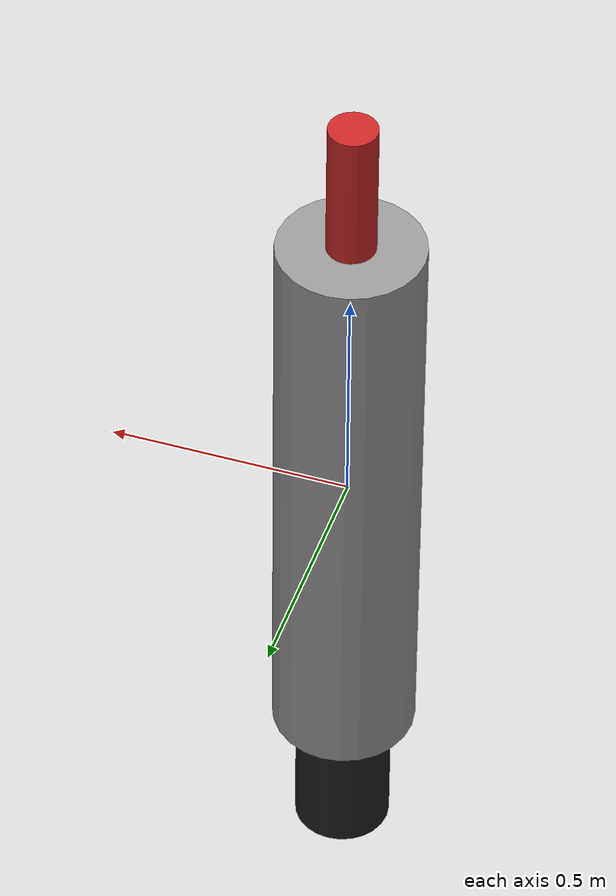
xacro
<?xml version='1.0'?>

<robot name="my_robot" xmlns:xacro="http://www.ros.org/wiki/xacro">
  <xacro:include filename="$(find simfloat_1001)/urdf/simfloat_1001.gazebo" />
  <link name="robot_footprint"></link>

  <joint name="robot_footprint_joint" type="fixed">
    <origin xyz="0 0 0" rpy="0 0 0" />
    <parent link="robot_footprint"/>
    <child link="chassis" />
  </joint>

   <joint type="fixed" name="antenna_joint">
    <origin xyz="0 0 0.80" rpy="0 0 0"/>
    <child link="antenna"/>
    <parent link="chassis"/>
    <axis xyz="0 0 1" rpy="0 0 0"/>
  </joint>

  <joint type="fixed" name="amodem_joint">
    <origin xyz="0 0 -0.80" rpy="0 0 0"/>
    <child link="amodem"/>
    <parent link="chassis"/>
    <axis xyz="0 0 1" rpy="0 0 0"/>
  </joint>

  <link name='chassis'>
    <pose>0 0 0 0 0 0</pose>
    <inertial>
      <mass value="65.0"/>
      <origin xyz="0.0 0 0" rpy=" 0 0 1.5707"/>
      <inertia
          ixx="0.1" ixy="0" ixz="0"
          iyy="0.1" iyz="0"
          izz="0.1"
      />
    </inertial>

    <collision name='collision'>
      <origin xyz="0 0 0" rpy=" 0 0 1.5707"/>
      <geometry>
        <cylinder radius="0.15" length="1.3"/>
      </geometry>
    </collision>

    <visual name='chassis_visual'>
      <origin xyz="0 0 0" rpy=" 0 0 1.5707"/>
      <geometry>
         <cylinder radius="0.15" length="1.3"/>
      </geometry>
    </visual>
  </link>

  <link name='antenna'>
    <inertial>
      <mass value="1.0"/>
      <origin xyz="0.0 0 0" rpy=" 0 0 1.5707"/>
      <inertia
          ixx="0.1" ixy="0" ixz="0"
          iyy="0.1" iyz="0"
          izz="0.1"
      />
    </inertial>
    <visual name='antenna_visual'>
      <origin xyz="0 0 0" rpy=" 0 0 1.5707"/>
      <geometry>
        <cylinder radius="0.05" length="0.3"/>
      </geometry>
    </visual>

     <collision name='antenna_collision'>
      <origin xyz="0 0 0" rpy=" 0 0 1.5707"/>
      <geometry>
        <cylinder radius="0.05" length="0.3"/>
      </geometry>
    </collision>
  </link>

  <link name='amodem'>
    <inertial>
      <mass value="25.0"/>
      <origin xyz="0.0 0 0" rpy=" 0 0 1.5707"/>
      <inertia
          ixx="0.1" ixy="0" ixz="0"
          iyy="0.1" iyz="0"
          izz="0.1"
      />
    </inertial>

    <visual name='amodem_visual'>
      <origin xyz="0 0 0" rpy=" 0 0 1.5707"/>
      <geometry>
        <cylinder radius="0.1" length="0.3"/>
      </geometry>
    </visual>

     <collision name='amodem_collision'>
      <origin xyz="0 0 0" rpy=" 0 0 1.5707"/>
      <geometry>
        <cylinder radius="0.1" length="0.03"/>
      </geometry>
    </collision>
  </link>

   <!-- Include the sensor modules -->

  <gazebo reference="chassis">
    <material>Gazebo/Gray</material>
  </gazebo>
  <gazebo reference="amodem">
    <material>Gazebo/Black</material>
  </gazebo>
  <gazebo reference="antenna">
    <material>Gazebo/Red</material>
  </gazebo>
</robot>
